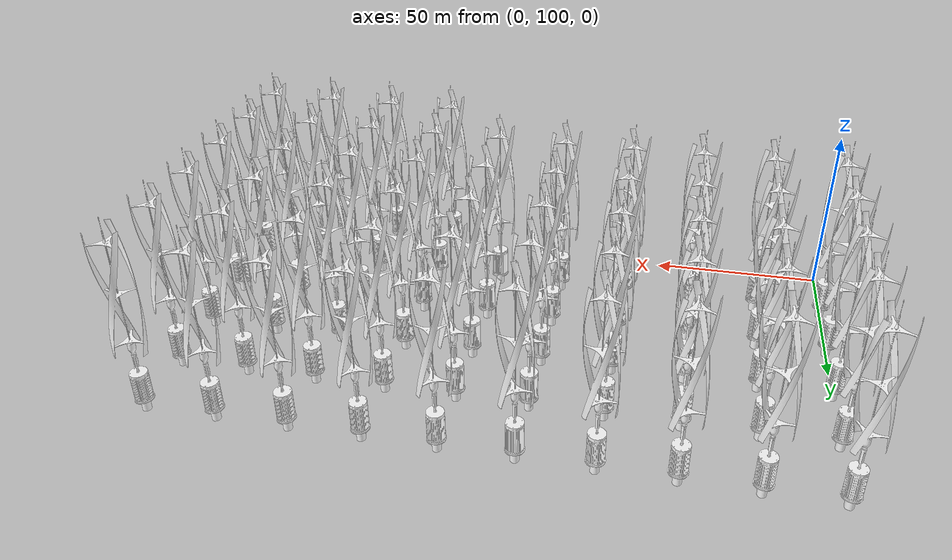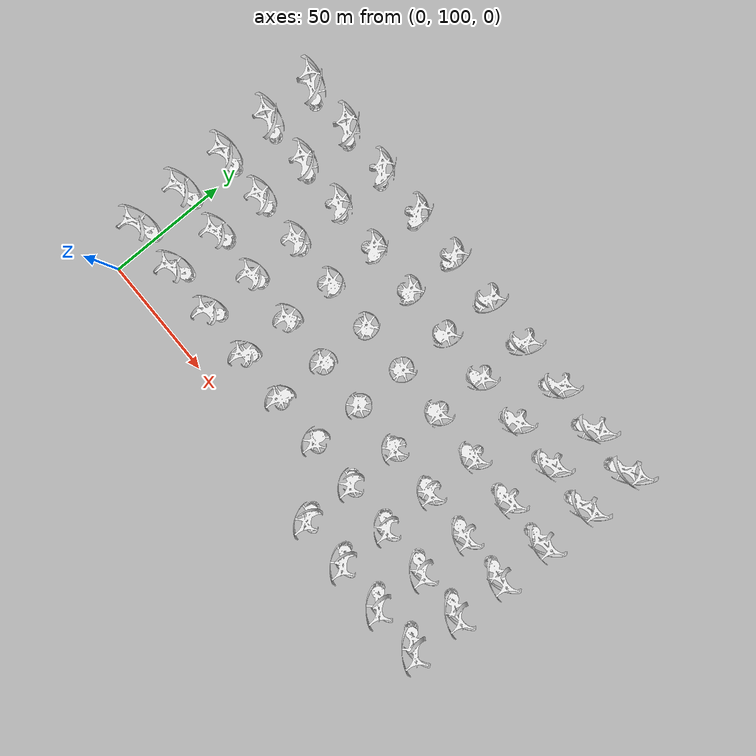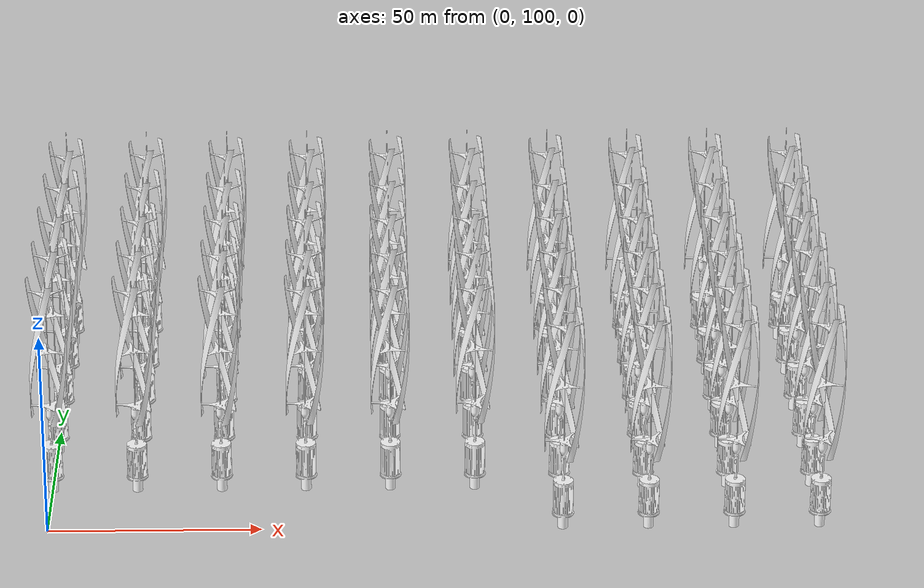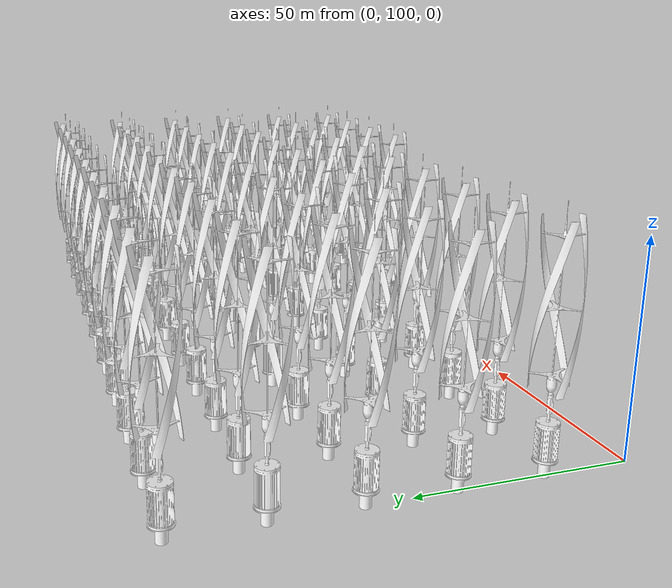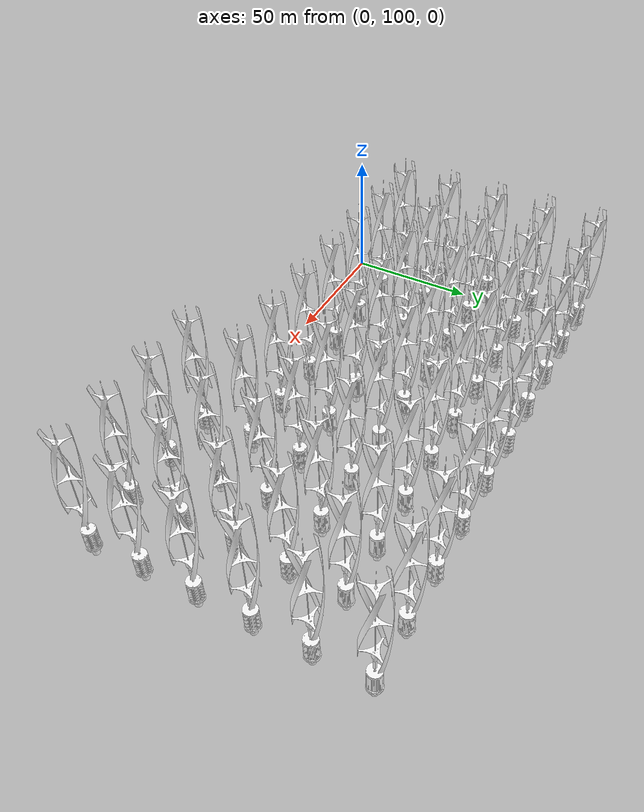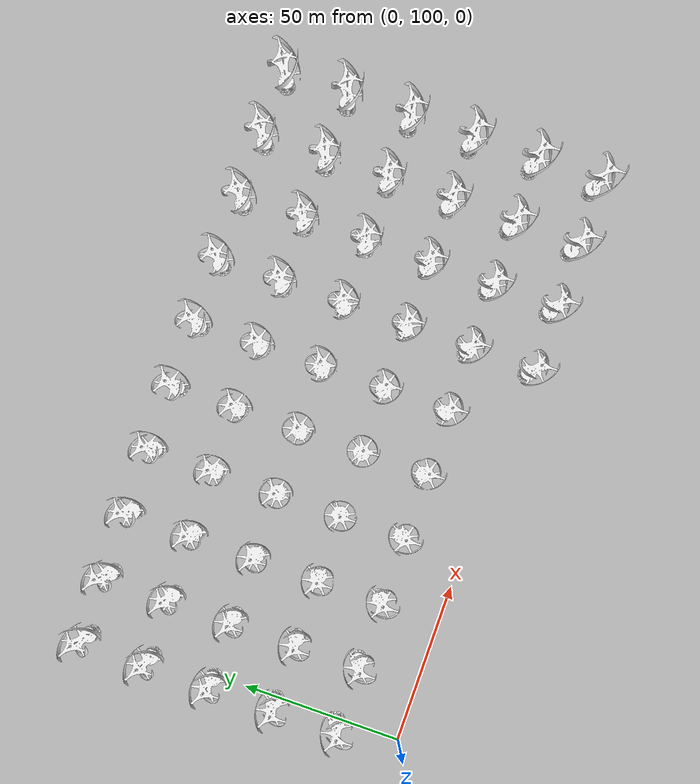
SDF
<sdf version="1.5">
 <world name="default">
  <include><uri>model://sun</uri></include>
  <model name="Turbina Eolica Vertical5">
   <static>1</static>
   <link name="link">
    <visual name="turbina_eolica_vertical">
     <geometry><mesh><uri>model://turbina_eolica/meshes/turbina_vertical.dae</uri></mesh></geometry>
    </visual>
   </link>
   <pose>0 120 0 0 -0 0</pose>
  </model>
  <model name="Turbina Eolica Vertical6">
   <static>1</static>
   <link name="link">
    <visual name="turbina_eolica_vertical">
     <geometry><mesh><uri>model://turbina_eolica/meshes/turbina_vertical.dae</uri></mesh></geometry>
    </visual>
   </link>
   <pose>0 140 0 0 -0 0</pose>
  </model>
  <model name="Turbina Eolica Vertical7">
   <static>1</static>
   <link name="link">
    <visual name="turbina_eolica_vertical">
     <geometry><mesh><uri>model://turbina_eolica/meshes/turbina_vertical.dae</uri></mesh></geometry>
    </visual>
   </link>
   <pose>0 160 0 0 -0 0</pose>
  </model>
  <model name="Turbina Eolica Vertical8">
   <static>1</static>
   <link name="link">
    <visual name="turbina_eolica_vertical">
     <geometry><mesh><uri>model://turbina_eolica/meshes/turbina_vertical.dae</uri></mesh></geometry>
    </visual>
   </link>
   <pose>0 180 0 0 -0 0</pose>
  </model>
  <model name="Turbina Eolica Vertical9">
   <static>1</static>
   <link name="link">
    <visual name="turbina_eolica_vertical">
     <geometry><mesh><uri>model://turbina_eolica/meshes/turbina_vertical.dae</uri></mesh></geometry>
    </visual>
   </link>
   <pose>0 200 0 0 -0 0</pose>
  </model>
  <model name="Turbina Eolica Vertical15">
   <static>1</static>
   <link name="link">
    <visual name="turbina_eolica_vertical">
     <geometry><mesh><uri>model://turbina_eolica/meshes/turbina_vertical.dae</uri></mesh></geometry>
    </visual>
   </link>
   <pose>20 120 0 0 -0 0</pose>
  </model>
  <model name="Turbina Eolica Vertical16">
   <static>1</static>
   <link name="link">
    <visual name="turbina_eolica_vertical">
     <geometry><mesh><uri>model://turbina_eolica/meshes/turbina_vertical.dae</uri></mesh></geometry>
    </visual>
   </link>
   <pose>20 140 0 0 -0 0</pose>
  </model>
  <model name="Turbina Eolica Vertical17">
   <static>1</static>
   <link name="link">
    <visual name="turbina_eolica_vertical">
     <geometry><mesh><uri>model://turbina_eolica/meshes/turbina_vertical.dae</uri></mesh></geometry>
    </visual>
   </link>
   <pose>20 160 0 0 -0 0</pose>
  </model>
  <model name="Turbina Eolica Vertical18">
   <static>1</static>
   <link name="link">
    <visual name="turbina_eolica_vertical">
     <geometry><mesh><uri>model://turbina_eolica/meshes/turbina_vertical.dae</uri></mesh></geometry>
    </visual>
   </link>
   <pose>20 180 0 0 -0 0</pose>
  </model>
  <model name="Turbina Eolica Vertical19">
   <static>1</static>
   <link name="link">
    <visual name="turbina_eolica_vertical">
     <geometry><mesh><uri>model://turbina_eolica/meshes/turbina_vertical.dae</uri></mesh></geometry>
    </visual>
   </link>
   <pose>20 200 0 0 -0 0</pose>
  </model>
  <model name="Turbina Eolica Vertical25">
   <static>1</static>
   <link name="link">
    <visual name="turbina_eolica_vertical">
     <geometry><mesh><uri>model://turbina_eolica/meshes/turbina_vertical.dae</uri></mesh></geometry>
    </visual>
   </link>
   <pose>40 120 0 0 -0 0</pose>
  </model>
  <model name="Turbina Eolica Vertical26">
   <static>1</static>
   <link name="link">
    <visual name="turbina_eolica_vertical">
     <geometry><mesh><uri>model://turbina_eolica/meshes/turbina_vertical.dae</uri></mesh></geometry>
    </visual>
   </link>
   <pose>40 140 0 0 -0 0</pose>
  </model>
  <model name="Turbina Eolica Vertical27">
   <static>1</static>
   <link name="link">
    <visual name="turbina_eolica_vertical">
     <geometry><mesh><uri>model://turbina_eolica/meshes/turbina_vertical.dae</uri></mesh></geometry>
    </visual>
   </link>
   <pose>40 160 0 0 -0 0</pose>
  </model>
  <model name="Turbina Eolica Vertical28">
   <static>1</static>
   <link name="link">
    <visual name="turbina_eolica_vertical">
     <geometry><mesh><uri>model://turbina_eolica/meshes/turbina_vertical.dae</uri></mesh></geometry>
    </visual>
   </link>
   <pose>40 180 0 0 -0 0</pose>
  </model>
  <model name="Turbina Eolica Vertical29">
   <static>1</static>
   <link name="link">
    <visual name="turbina_eolica_vertical">
     <geometry><mesh><uri>model://turbina_eolica/meshes/turbina_vertical.dae</uri></mesh></geometry>
    </visual>
   </link>
   <pose>40 200 0 0 -0 0</pose>
  </model>
  <model name="Turbina Eolica Vertical35">
   <static>1</static>
   <link name="link">
    <visual name="turbina_eolica_vertical">
     <geometry><mesh><uri>model://turbina_eolica/meshes/turbina_vertical.dae</uri></mesh></geometry>
    </visual>
   </link>
   <pose>60 120 0 0 -0 0</pose>
  </model>
  <model name="Turbina Eolica Vertical36">
   <static>1</static>
   <link name="link">
    <visual name="turbina_eolica_vertical">
     <geometry><mesh><uri>model://turbina_eolica/meshes/turbina_vertical.dae</uri></mesh></geometry>
    </visual>
   </link>
   <pose>60 140 0 0 -0 0</pose>
  </model>
  <model name="Turbina Eolica Vertical37">
   <static>1</static>
   <link name="link">
    <visual name="turbina_eolica_vertical">
     <geometry><mesh><uri>model://turbina_eolica/meshes/turbina_vertical.dae</uri></mesh></geometry>
    </visual>
   </link>
   <pose>60 160 0 0 -0 0</pose>
  </model>
  <model name="Turbina Eolica Vertical38">
   <static>1</static>
   <link name="link">
    <visual name="turbina_eolica_vertical">
     <geometry><mesh><uri>model://turbina_eolica/meshes/turbina_vertical.dae</uri></mesh></geometry>
    </visual>
   </link>
   <pose>60 180 0 0 -0 0</pose>
  </model>
  <model name="Turbina Eolica Vertical39">
   <static>1</static>
   <link name="link">
    <visual name="turbina_eolica_vertical">
     <geometry><mesh><uri>model://turbina_eolica/meshes/turbina_vertical.dae</uri></mesh></geometry>
    </visual>
   </link>
   <pose>60 200 0 0 -0 0</pose>
  </model>
  <model name="Turbina Eolica Vertical45">
   <static>1</static>
   <link name="link">
    <visual name="turbina_eolica_vertical">
     <geometry><mesh><uri>model://turbina_eolica/meshes/turbina_vertical.dae</uri></mesh></geometry>
    </visual>
   </link>
   <pose>80 120 0 0 -0 0</pose>
  </model>
  <model name="Turbina Eolica Vertical46">
   <static>1</static>
   <link name="link">
    <visual name="turbina_eolica_vertical">
     <geometry><mesh><uri>model://turbina_eolica/meshes/turbina_vertical.dae</uri></mesh></geometry>
    </visual>
   </link>
   <pose>80 140 0 0 -0 0</pose>
  </model>
  <model name="Turbina Eolica Vertical47">
   <static>1</static>
   <link name="link">
    <visual name="turbina_eolica_vertical">
     <geometry><mesh><uri>model://turbina_eolica/meshes/turbina_vertical.dae</uri></mesh></geometry>
    </visual>
   </link>
   <pose>80 160 0 0 -0 0</pose>
  </model>
  <model name="Turbina Eolica Vertical48">
   <static>1</static>
   <link name="link">
    <visual name="turbina_eolica_vertical">
     <geometry><mesh><uri>model://turbina_eolica/meshes/turbina_vertical.dae</uri></mesh></geometry>
    </visual>
   </link>
   <pose>80 180 0 0 -0 0</pose>
  </model>
  <model name="Turbina Eolica Vertical49">
   <static>1</static>
   <link name="link">
    <visual name="turbina_eolica_vertical">
     <geometry><mesh><uri>model://turbina_eolica/meshes/turbina_vertical.dae</uri></mesh></geometry>
    </visual>
   </link>
   <pose>80 200 0 0 -0 0</pose>
  </model>
  <model name="Turbina Eolica Vertical55">
   <static>1</static>
   <link name="link">
    <visual name="turbina_eolica_vertical">
     <geometry><mesh><uri>model://turbina_eolica/meshes/turbina_vertical.dae</uri></mesh></geometry>
    </visual>
   </link>
   <pose>100 120 0 0 -0 0</pose>
  </model>
  <model name="Turbina Eolica Vertical56">
   <static>1</static>
   <link name="link">
    <visual name="turbina_eolica_vertical">
     <geometry><mesh><uri>model://turbina_eolica/meshes/turbina_vertical.dae</uri></mesh></geometry>
    </visual>
   </link>
   <pose>100 140 0 0 -0 0</pose>
  </model>
  <model name="Turbina Eolica Vertical57">
   <static>1</static>
   <link name="link">
    <visual name="turbina_eolica_vertical">
     <geometry><mesh><uri>model://turbina_eolica/meshes/turbina_vertical.dae</uri></mesh></geometry>
    </visual>
   </link>
   <pose>100 160 0 0 -0 0</pose>
  </model>
  <model name="Turbina Eolica Vertical58">
   <static>1</static>
   <link name="link">
    <visual name="turbina_eolica_vertical">
     <geometry><mesh><uri>model://turbina_eolica/meshes/turbina_vertical.dae</uri></mesh></geometry>
    </visual>
   </link>
   <pose>100 180 0 0 -0 0</pose>
  </model>
  <model name="Turbina Eolica Vertical59">
   <static>1</static>
   <link name="link">
    <visual name="turbina_eolica_vertical">
     <geometry><mesh><uri>model://turbina_eolica/meshes/turbina_vertical.dae</uri></mesh></geometry>
    </visual>
   </link>
   <pose>100 200 0 0 -0 0</pose>
  </model>
  <model name="Turbina Eolica Vertical64">
   <static>1</static>
   <link name="link">
    <visual name="turbina_eolica_vertical">
     <geometry><mesh><uri>model://turbina_eolica/meshes/turbina_vertical.dae</uri></mesh></geometry>
    </visual>
   </link>
   <pose>120 100 0 0 -0 0</pose>
  </model>
  <model name="Turbina Eolica Vertical65">
   <static>1</static>
   <link name="link">
    <visual name="turbina_eolica_vertical">
     <geometry><mesh><uri>model://turbina_eolica/meshes/turbina_vertical.dae</uri></mesh></geometry>
    </visual>
   </link>
   <pose>120 120 0 0 -0 0</pose>
  </model>
  <model name="Turbina Eolica Vertical66">
   <static>1</static>
   <link name="link">
    <visual name="turbina_eolica_vertical">
     <geometry><mesh><uri>model://turbina_eolica/meshes/turbina_vertical.dae</uri></mesh></geometry>
    </visual>
   </link>
   <pose>120 140 0 0 -0 0</pose>
  </model>
  <model name="Turbina Eolica Vertical67">
   <static>1</static>
   <link name="link">
    <visual name="turbina_eolica_vertical">
     <geometry><mesh><uri>model://turbina_eolica/meshes/turbina_vertical.dae</uri></mesh></geometry>
    </visual>
   </link>
   <pose>120 160 0 0 -0 0</pose>
  </model>
  <model name="Turbina Eolica Vertical68">
   <static>1</static>
   <link name="link">
    <visual name="turbina_eolica_vertical">
     <geometry><mesh><uri>model://turbina_eolica/meshes/turbina_vertical.dae</uri></mesh></geometry>
    </visual>
   </link>
   <pose>120 180 0 0 -0 0</pose>
  </model>
  <model name="Turbina Eolica Vertical69">
   <static>1</static>
   <link name="link">
    <visual name="turbina_eolica_vertical">
     <geometry><mesh><uri>model://turbina_eolica/meshes/turbina_vertical.dae</uri></mesh></geometry>
    </visual>
   </link>
   <pose>120 200 0 0 -0 0</pose>
  </model>
  <model name="Turbina Eolica Vertical74">
   <static>1</static>
   <link name="link">
    <visual name="turbina_eolica_vertical">
     <geometry><mesh><uri>model://turbina_eolica/meshes/turbina_vertical.dae</uri></mesh></geometry>
    </visual>
   </link>
   <pose>140 100 0 0 -0 0</pose>
  </model>
  <model name="Turbina Eolica Vertical75">
   <static>1</static>
   <link name="link">
    <visual name="turbina_eolica_vertical">
     <geometry><mesh><uri>model://turbina_eolica/meshes/turbina_vertical.dae</uri></mesh></geometry>
    </visual>
   </link>
   <pose>140 120 0 0 -0 0</pose>
  </model>
  <model name="Turbina Eolica Vertical76">
   <static>1</static>
   <link name="link">
    <visual name="turbina_eolica_vertical">
     <geometry><mesh><uri>model://turbina_eolica/meshes/turbina_vertical.dae</uri></mesh></geometry>
    </visual>
   </link>
   <pose>140 140 0 0 -0 0</pose>
  </model>
  <model name="Turbina Eolica Vertical77">
   <static>1</static>
   <link name="link">
    <visual name="turbina_eolica_vertical">
     <geometry><mesh><uri>model://turbina_eolica/meshes/turbina_vertical.dae</uri></mesh></geometry>
    </visual>
   </link>
   <pose>140 160 0 0 -0 0</pose>
  </model>
  <model name="Turbina Eolica Vertical78">
   <static>1</static>
   <link name="link">
    <visual name="turbina_eolica_vertical">
     <geometry><mesh><uri>model://turbina_eolica/meshes/turbina_vertical.dae</uri></mesh></geometry>
    </visual>
   </link>
   <pose>140 180 0 0 -0 0</pose>
  </model>
  <model name="Turbina Eolica Vertical79">
   <static>1</static>
   <link name="link">
    <visual name="turbina_eolica_vertical">
     <geometry><mesh><uri>model://turbina_eolica/meshes/turbina_vertical.dae</uri></mesh></geometry>
    </visual>
   </link>
   <pose>140 200 0 0 -0 0</pose>
  </model>
  <model name="Turbina Eolica Vertical84">
   <static>1</static>
   <link name="link">
    <visual name="turbina_eolica_vertical">
     <geometry><mesh><uri>model://turbina_eolica/meshes/turbina_vertical.dae</uri></mesh></geometry>
    </visual>
   </link>
   <pose>160 100 0 0 -0 0</pose>
  </model>
  <model name="Turbina Eolica Vertical85">
   <static>1</static>
   <link name="link">
    <visual name="turbina_eolica_vertical">
     <geometry><mesh><uri>model://turbina_eolica/meshes/turbina_vertical.dae</uri></mesh></geometry>
    </visual>
   </link>
   <pose>160 120 0 0 -0 0</pose>
  </model>
  <model name="Turbina Eolica Vertical86">
   <static>1</static>
   <link name="link">
    <visual name="turbina_eolica_vertical">
     <geometry><mesh><uri>model://turbina_eolica/meshes/turbina_vertical.dae</uri></mesh></geometry>
    </visual>
   </link>
   <pose>160 140 0 0 -0 0</pose>
  </model>
  <model name="Turbina Eolica Vertical87">
   <static>1</static>
   <link name="link">
    <visual name="turbina_eolica_vertical">
     <geometry><mesh><uri>model://turbina_eolica/meshes/turbina_vertical.dae</uri></mesh></geometry>
    </visual>
   </link>
   <pose>160 160 0 0 -0 0</pose>
  </model>
  <model name="Turbina Eolica Vertical88">
   <static>1</static>
   <link name="link">
    <visual name="turbina_eolica_vertical">
     <geometry><mesh><uri>model://turbina_eolica/meshes/turbina_vertical.dae</uri></mesh></geometry>
    </visual>
   </link>
   <pose>160 180 0 0 -0 0</pose>
  </model>
  <model name="Turbina Eolica Vertical89">
   <static>1</static>
   <link name="link">
    <visual name="turbina_eolica_vertical">
     <geometry><mesh><uri>model://turbina_eolica/meshes/turbina_vertical.dae</uri></mesh></geometry>
    </visual>
   </link>
   <pose>160 200 0 0 -0 0</pose>
  </model>
  <model name="Turbina Eolica Vertical94">
   <static>1</static>
   <link name="link">
    <visual name="turbina_eolica_vertical">
     <geometry><mesh><uri>model://turbina_eolica/meshes/turbina_vertical.dae</uri></mesh></geometry>
    </visual>
   </link>
   <pose>180 100 0 0 -0 0</pose>
  </model>
  <model name="Turbina Eolica Vertical95">
   <static>1</static>
   <link name="link">
    <visual name="turbina_eolica_vertical">
     <geometry><mesh><uri>model://turbina_eolica/meshes/turbina_vertical.dae</uri></mesh></geometry>
    </visual>
   </link>
   <pose>180 120 0 0 -0 0</pose>
  </model>
  <model name="Turbina Eolica Vertical96">
   <static>1</static>
   <link name="link">
    <visual name="turbina_eolica_vertical">
     <geometry><mesh><uri>model://turbina_eolica/meshes/turbina_vertical.dae</uri></mesh></geometry>
    </visual>
   </link>
   <pose>180 140 0 0 -0 0</pose>
  </model>
  <model name="Turbina Eolica Vertical97">
   <static>1</static>
   <link name="link">
    <visual name="turbina_eolica_vertical">
     <geometry><mesh><uri>model://turbina_eolica/meshes/turbina_vertical.dae</uri></mesh></geometry>
    </visual>
   </link>
   <pose>180 160 0 0 -0 0</pose>
  </model>
  <model name="Turbina Eolica Vertical98">
   <static>1</static>
   <link name="link">
    <visual name="turbina_eolica_vertical">
     <geometry><mesh><uri>model://turbina_eolica/meshes/turbina_vertical.dae</uri></mesh></geometry>
    </visual>
   </link>
   <pose>180 180 0 0 -0 0</pose>
  </model>
  <model name="Turbina Eolica Vertical99">
   <static>1</static>
   <link name="link">
    <visual name="turbina_eolica_vertical">
     <geometry><mesh><uri>model://turbina_eolica/meshes/turbina_vertical.dae</uri></mesh></geometry>
    </visual>
   </link>
   <pose>180 200 0 0 -0 0</pose>
  </model>
 </world>
</sdf>
